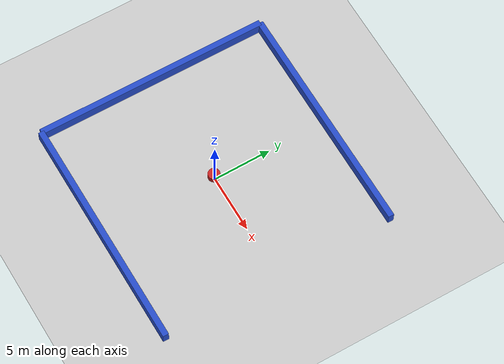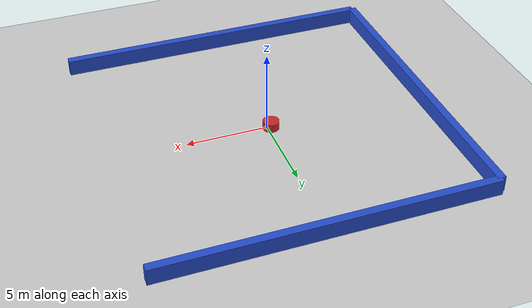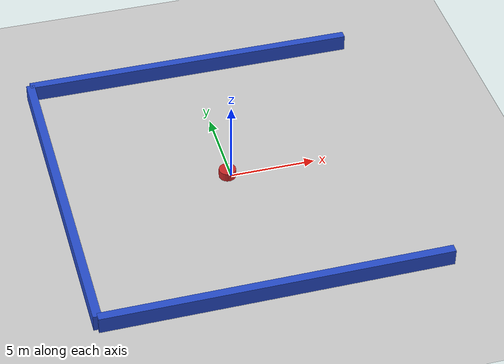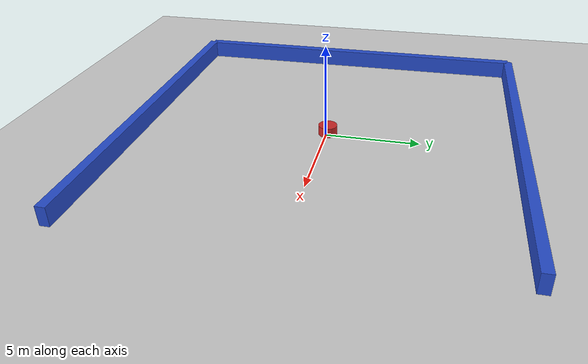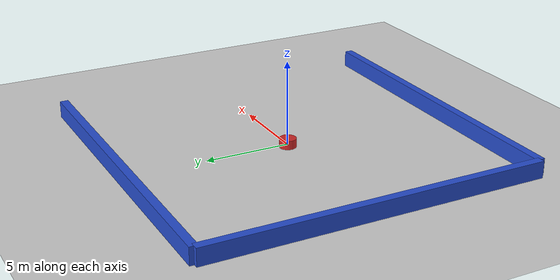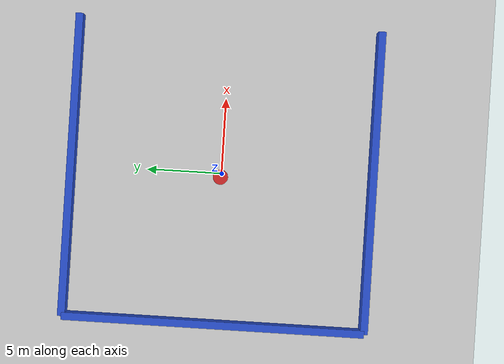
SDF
<?xml version="1.0" ?>
<sdf version="1.6">
   <world name="default">
    <model name="ground_plane">
      <static>1</static>
      <link name="link">
        <collision name="collision">
          <geometry><plane><normal>0 0 1</normal><size>100 100</size></plane></geometry>
          <surface><friction><ode><mu>100</mu><mu2>50</mu2></ode><torsional><ode/></torsional></friction><contact><ode/></contact></surface>
        </collision>
        <visual name="visual">
          <cast_shadows>0</cast_shadows>
          <geometry><plane><normal>0 0 1</normal><size>100 100</size></plane></geometry>
          <material><ambient>0.8 0.8 0.8 1</ambient><diffuse>0.8 0.8 0.8 1</diffuse><specular>0.01 0.01 0.01 1</specular></material>
        </visual>
      </link>
    </model>
    <light name="sun" type="directional">
      <cast_shadows>1</cast_shadows>
      <pose>0 0 10 0 0 0</pose>
      <diffuse>1 1 1 1</diffuse>
      <specular>0.1 0.1 0.1 1</specular>
      <attenuation><range>1000</range><constant>0.9</constant><linear>0.01</linear><quadratic>0.001</quadratic></attenuation>
      <direction>-0.5 0.5 -1</direction>
    </light>

    <model name='hardlibobs_168'>
      <static>1</static>
      <pose frame=''>-0.225000 0.075000 0.000000 0.000000 0.000000 0.000000</pose>
      <link name='link'>
        <inertial>
          <mass>1</mass>
          <inertia>
            <ixx>0.145833</ixx>
            <ixy>0</ixy>
            <ixz>0</ixz>
            <iyy>0.145833</iyy>
            <iyz>0</iyz>
            <izz>0.125</izz>
          </inertia>
        </inertial>
        <collision name='collision'>
           <geometry>
            <cylinder>
                <radius>0.5000</radius>
                 <length> 1 </length>
            </cylinder>
          </geometry>
           <surface>
            <contact>
              <ode/>
            </contact>
            <bounce/>
            <friction>
              <torsional>
                <ode/>
              </torsional>
              <ode/>
            </friction>
          </surface>
        </collision>
        <visual name='visual'>
           <geometry>
            <cylinder>
                <radius>0.5000</radius>
                 <length> 1 </length>
            </cylinder>
          </geometry>
          <material>
            <script>
              <name>Gazebo/Red</name>
              <uri>file://media/materials/scripts/gazebo.material</uri>
            </script>
          </material>
        </visual>
        <self_collide>0</self_collide>
        <kinematic>0</kinematic>
        <gravity>1</gravity>
      </link>
      <plugin name='hardlibobs_168' filename='hardlibobs_168.so'/>
    </model>

    <model name='hardlibobs_5'>
      <static>1</static>
      <pose frame=''>-0.225000 0.075000 0.000000 0.000000 0.000000 0.000000</pose>
      <link name='link'>
        <inertial>
          <mass>1</mass>
          <inertia>
            <ixx>0.145833</ixx>
            <ixy>0</ixy>
            <ixz>0</ixz>
            <iyy>0.145833</iyy>
            <iyz>0</iyz>
            <izz>0.125</izz>
          </inertia>
        </inertial>
        <collision name='collision'>
           <geometry>
            <cylinder>
                <radius>0.5000</radius>
                 <length> 1 </length>
            </cylinder>
          </geometry>
           <surface>
            <contact>
              <ode/>
            </contact>
            <bounce/>
            <friction>
              <torsional>
                <ode/>
              </torsional>
              <ode/>
            </friction>
          </surface>
        </collision>
        <visual name='visual'>
           <geometry>
            <cylinder>
                <radius>0.5000</radius>
                 <length> 1 </length>
            </cylinder>
          </geometry>
          <material>
            <script>
              <name>Gazebo/Red</name>
              <uri>file://media/materials/scripts/gazebo.material</uri>
            </script>
          </material>
        </visual>
        <self_collide>0</self_collide>
        <kinematic>0</kinematic>
        <gravity>1</gravity>
      </link>
      <plugin name='hardlibobs_5' filename='hardlibobs_5.so'/>
    </model>

    <model name='hardlibobs_129'>
      <static>1</static>
      <pose frame=''>-0.225000 0.075000 0.000000 0.000000 0.000000 0.000000</pose>
      <link name='link'>
        <inertial>
          <mass>1</mass>
          <inertia>
            <ixx>0.145833</ixx>
            <ixy>0</ixy>
            <ixz>0</ixz>
            <iyy>0.145833</iyy>
            <iyz>0</iyz>
            <izz>0.125</izz>
          </inertia>
        </inertial>
        <collision name='collision'>
           <geometry>
            <cylinder>
                <radius>0.5000</radius>
                 <length> 1 </length>
            </cylinder>
          </geometry>
           <surface>
            <contact>
              <ode/>
            </contact>
            <bounce/>
            <friction>
              <torsional>
                <ode/>
              </torsional>
              <ode/>
            </friction>
          </surface>
        </collision>
        <visual name='visual'>
           <geometry>
            <cylinder>
                <radius>0.5000</radius>
                 <length> 1 </length>
            </cylinder>
          </geometry>
          <material>
            <script>
              <name>Gazebo/Red</name>
              <uri>file://media/materials/scripts/gazebo.material</uri>
            </script>
          </material>
        </visual>
        <self_collide>0</self_collide>
        <kinematic>0</kinematic>
        <gravity>1</gravity>
      </link>
      <plugin name='hardlibobs_129' filename='hardlibobs_129.so'/>
    </model>

    <model name='hardlibobs_124'>
      <static>1</static>
      <pose frame=''>-0.225000 0.075000 0.000000 0.000000 0.000000 0.000000</pose>
      <link name='link'>
        <inertial>
          <mass>1</mass>
          <inertia>
            <ixx>0.145833</ixx>
            <ixy>0</ixy>
            <ixz>0</ixz>
            <iyy>0.145833</iyy>
            <iyz>0</iyz>
            <izz>0.125</izz>
          </inertia>
        </inertial>
        <collision name='collision'>
           <geometry>
            <cylinder>
                <radius>0.5000</radius>
                 <length> 1 </length>
            </cylinder>
          </geometry>
           <surface>
            <contact>
              <ode/>
            </contact>
            <bounce/>
            <friction>
              <torsional>
                <ode/>
              </torsional>
              <ode/>
            </friction>
          </surface>
        </collision>
        <visual name='visual'>
           <geometry>
            <cylinder>
                <radius>0.5000</radius>
                 <length> 1 </length>
            </cylinder>
          </geometry>
          <material>
            <script>
              <name>Gazebo/Red</name>
              <uri>file://media/materials/scripts/gazebo.material</uri>
            </script>
          </material>
        </visual>
        <self_collide>0</self_collide>
        <kinematic>0</kinematic>
        <gravity>1</gravity>
      </link>
      <plugin name='hardlibobs_124' filename='hardlibobs_124.so'/>
    </model>

    <model name='hardlibobs_4'>
      <static>1</static>
      <pose frame=''>-0.225000 0.075000 0.000000 0.000000 0.000000 0.000000</pose>
      <link name='link'>
        <inertial>
          <mass>1</mass>
          <inertia>
            <ixx>0.145833</ixx>
            <ixy>0</ixy>
            <ixz>0</ixz>
            <iyy>0.145833</iyy>
            <iyz>0</iyz>
            <izz>0.125</izz>
          </inertia>
        </inertial>
        <collision name='collision'>
           <geometry>
            <cylinder>
                <radius>0.5000</radius>
                 <length> 1 </length>
            </cylinder>
          </geometry>
           <surface>
            <contact>
              <ode/>
            </contact>
            <bounce/>
            <friction>
              <torsional>
                <ode/>
              </torsional>
              <ode/>
            </friction>
          </surface>
        </collision>
        <visual name='visual'>
           <geometry>
            <cylinder>
                <radius>0.5000</radius>
                 <length> 1 </length>
            </cylinder>
          </geometry>
          <material>
            <script>
              <name>Gazebo/Red</name>
              <uri>file://media/materials/scripts/gazebo.material</uri>
            </script>
          </material>
        </visual>
        <self_collide>0</self_collide>
        <kinematic>0</kinematic>
        <gravity>1</gravity>
      </link>
      <plugin name='hardlibobs_4' filename='hardlibobs_4.so'/>
    </model>

    <model name='hardlibobs_84'>
      <static>1</static>
      <pose frame=''>-0.225000 0.075000 0.000000 0.000000 0.000000 0.000000</pose>
      <link name='link'>
        <inertial>
          <mass>1</mass>
          <inertia>
            <ixx>0.145833</ixx>
            <ixy>0</ixy>
            <ixz>0</ixz>
            <iyy>0.145833</iyy>
            <iyz>0</iyz>
            <izz>0.125</izz>
          </inertia>
        </inertial>
        <collision name='collision'>
           <geometry>
            <cylinder>
                <radius>0.5000</radius>
                 <length> 1 </length>
            </cylinder>
          </geometry>
           <surface>
            <contact>
              <ode/>
            </contact>
            <bounce/>
            <friction>
              <torsional>
                <ode/>
              </torsional>
              <ode/>
            </friction>
          </surface>
        </collision>
        <visual name='visual'>
           <geometry>
            <cylinder>
                <radius>0.5000</radius>
                 <length> 1 </length>
            </cylinder>
          </geometry>
          <material>
            <script>
              <name>Gazebo/Red</name>
              <uri>file://media/materials/scripts/gazebo.material</uri>
            </script>
          </material>
        </visual>
        <self_collide>0</self_collide>
        <kinematic>0</kinematic>
        <gravity>1</gravity>
      </link>
      <plugin name='hardlibobs_84' filename='hardlibobs_84.so'/>
    </model>

    <model name='hardlibobs_99'>
      <static>1</static>
      <pose frame=''>-0.225000 0.075000 0.000000 0.000000 0.000000 0.000000</pose>
      <link name='link'>
        <inertial>
          <mass>1</mass>
          <inertia>
            <ixx>0.145833</ixx>
            <ixy>0</ixy>
            <ixz>0</ixz>
            <iyy>0.145833</iyy>
            <iyz>0</iyz>
            <izz>0.125</izz>
          </inertia>
        </inertial>
        <collision name='collision'>
           <geometry>
            <cylinder>
                <radius>0.5000</radius>
                 <length> 1 </length>
            </cylinder>
          </geometry>
           <surface>
            <contact>
              <ode/>
            </contact>
            <bounce/>
            <friction>
              <torsional>
                <ode/>
              </torsional>
              <ode/>
            </friction>
          </surface>
        </collision>
        <visual name='visual'>
           <geometry>
            <cylinder>
                <radius>0.5000</radius>
                 <length> 1 </length>
            </cylinder>
          </geometry>
          <material>
            <script>
              <name>Gazebo/Red</name>
              <uri>file://media/materials/scripts/gazebo.material</uri>
            </script>
          </material>
        </visual>
        <self_collide>0</self_collide>
        <kinematic>0</kinematic>
        <gravity>1</gravity>
      </link>
      <plugin name='hardlibobs_99' filename='hardlibobs_99.so'/>
    </model>

    <model name='hardlibobs_149'>
      <static>1</static>
      <pose frame=''>-0.225000 0.075000 0.000000 0.000000 0.000000 0.000000</pose>
      <link name='link'>
        <inertial>
          <mass>1</mass>
          <inertia>
            <ixx>0.145833</ixx>
            <ixy>0</ixy>
            <ixz>0</ixz>
            <iyy>0.145833</iyy>
            <iyz>0</iyz>
            <izz>0.125</izz>
          </inertia>
        </inertial>
        <collision name='collision'>
           <geometry>
            <cylinder>
                <radius>0.5000</radius>
                 <length> 1 </length>
            </cylinder>
          </geometry>
           <surface>
            <contact>
              <ode/>
            </contact>
            <bounce/>
            <friction>
              <torsional>
                <ode/>
              </torsional>
              <ode/>
            </friction>
          </surface>
        </collision>
        <visual name='visual'>
           <geometry>
            <cylinder>
                <radius>0.5000</radius>
                 <length> 1 </length>
            </cylinder>
          </geometry>
          <material>
            <script>
              <name>Gazebo/Red</name>
              <uri>file://media/materials/scripts/gazebo.material</uri>
            </script>
          </material>
        </visual>
        <self_collide>0</self_collide>
        <kinematic>0</kinematic>
        <gravity>1</gravity>
      </link>
      <plugin name='hardlibobs_149' filename='hardlibobs_149.so'/>
    </model>

    <model name='hardlibobs_104'>
      <static>1</static>
      <pose frame=''>-0.225000 0.075000 0.000000 0.000000 0.000000 0.000000</pose>
      <link name='link'>
        <inertial>
          <mass>1</mass>
          <inertia>
            <ixx>0.145833</ixx>
            <ixy>0</ixy>
            <ixz>0</ixz>
            <iyy>0.145833</iyy>
            <iyz>0</iyz>
            <izz>0.125</izz>
          </inertia>
        </inertial>
        <collision name='collision'>
           <geometry>
            <cylinder>
                <radius>0.5000</radius>
                 <length> 1 </length>
            </cylinder>
          </geometry>
           <surface>
            <contact>
              <ode/>
            </contact>
            <bounce/>
            <friction>
              <torsional>
                <ode/>
              </torsional>
              <ode/>
            </friction>
          </surface>
        </collision>
        <visual name='visual'>
           <geometry>
            <cylinder>
                <radius>0.5000</radius>
                 <length> 1 </length>
            </cylinder>
          </geometry>
          <material>
            <script>
              <name>Gazebo/Red</name>
              <uri>file://media/materials/scripts/gazebo.material</uri>
            </script>
          </material>
        </visual>
        <self_collide>0</self_collide>
        <kinematic>0</kinematic>
        <gravity>1</gravity>
      </link>
      <plugin name='hardlibobs_104' filename='hardlibobs_104.so'/>
    </model>

    <model name='hardlibobs_195'>
      <static>1</static>
      <pose frame=''>-0.225000 0.075000 0.000000 0.000000 0.000000 0.000000</pose>
      <link name='link'>
        <inertial>
          <mass>1</mass>
          <inertia>
            <ixx>0.145833</ixx>
            <ixy>0</ixy>
            <ixz>0</ixz>
            <iyy>0.145833</iyy>
            <iyz>0</iyz>
            <izz>0.125</izz>
          </inertia>
        </inertial>
        <collision name='collision'>
           <geometry>
            <cylinder>
                <radius>0.5000</radius>
                 <length> 1 </length>
            </cylinder>
          </geometry>
           <surface>
            <contact>
              <ode/>
            </contact>
            <bounce/>
            <friction>
              <torsional>
                <ode/>
              </torsional>
              <ode/>
            </friction>
          </surface>
        </collision>
        <visual name='visual'>
           <geometry>
            <cylinder>
                <radius>0.5000</radius>
                 <length> 1 </length>
            </cylinder>
          </geometry>
          <material>
            <script>
              <name>Gazebo/Red</name>
              <uri>file://media/materials/scripts/gazebo.material</uri>
            </script>
          </material>
        </visual>
        <self_collide>0</self_collide>
        <kinematic>0</kinematic>
        <gravity>1</gravity>
      </link>
      <plugin name='hardlibobs_195' filename='hardlibobs_195.so'/>
    </model>

    <model name='hardlibobs_54'>
      <static>1</static>
      <pose frame=''>-0.225000 0.075000 0.000000 0.000000 0.000000 0.000000</pose>
      <link name='link'>
        <inertial>
          <mass>1</mass>
          <inertia>
            <ixx>0.145833</ixx>
            <ixy>0</ixy>
            <ixz>0</ixz>
            <iyy>0.145833</iyy>
            <iyz>0</iyz>
            <izz>0.125</izz>
          </inertia>
        </inertial>
        <collision name='collision'>
           <geometry>
            <cylinder>
                <radius>0.5000</radius>
                 <length> 1 </length>
            </cylinder>
          </geometry>
           <surface>
            <contact>
              <ode/>
            </contact>
            <bounce/>
            <friction>
              <torsional>
                <ode/>
              </torsional>
              <ode/>
            </friction>
          </surface>
        </collision>
        <visual name='visual'>
           <geometry>
            <cylinder>
                <radius>0.5000</radius>
                 <length> 1 </length>
            </cylinder>
          </geometry>
          <material>
            <script>
              <name>Gazebo/Red</name>
              <uri>file://media/materials/scripts/gazebo.material</uri>
            </script>
          </material>
        </visual>
        <self_collide>0</self_collide>
        <kinematic>0</kinematic>
        <gravity>1</gravity>
      </link>
      <plugin name='hardlibobs_54' filename='hardlibobs_54.so'/>
    </model>

    <model name='hardlibobs_183'>
      <static>1</static>
      <pose frame=''>-0.225000 0.075000 0.000000 0.000000 0.000000 0.000000</pose>
      <link name='link'>
        <inertial>
          <mass>1</mass>
          <inertia>
            <ixx>0.145833</ixx>
            <ixy>0</ixy>
            <ixz>0</ixz>
            <iyy>0.145833</iyy>
            <iyz>0</iyz>
            <izz>0.125</izz>
          </inertia>
        </inertial>
        <collision name='collision'>
           <geometry>
            <cylinder>
                <radius>0.5000</radius>
                 <length> 1 </length>
            </cylinder>
          </geometry>
           <surface>
            <contact>
              <ode/>
            </contact>
            <bounce/>
            <friction>
              <torsional>
                <ode/>
              </torsional>
              <ode/>
            </friction>
          </surface>
        </collision>
        <visual name='visual'>
           <geometry>
            <cylinder>
                <radius>0.5000</radius>
                 <length> 1 </length>
            </cylinder>
          </geometry>
          <material>
            <script>
              <name>Gazebo/Red</name>
              <uri>file://media/materials/scripts/gazebo.material</uri>
            </script>
          </material>
        </visual>
        <self_collide>0</self_collide>
        <kinematic>0</kinematic>
        <gravity>1</gravity>
      </link>
      <plugin name='hardlibobs_183' filename='hardlibobs_183.so'/>
    </model>

    <model name='hardlibobs_189'>
      <static>1</static>
      <pose frame=''>-0.225000 0.075000 0.000000 0.000000 0.000000 0.000000</pose>
      <link name='link'>
        <inertial>
          <mass>1</mass>
          <inertia>
            <ixx>0.145833</ixx>
            <ixy>0</ixy>
            <ixz>0</ixz>
            <iyy>0.145833</iyy>
            <iyz>0</iyz>
            <izz>0.125</izz>
          </inertia>
        </inertial>
        <collision name='collision'>
           <geometry>
            <cylinder>
                <radius>0.5000</radius>
                 <length> 1 </length>
            </cylinder>
          </geometry>
           <surface>
            <contact>
              <ode/>
            </contact>
            <bounce/>
            <friction>
              <torsional>
                <ode/>
              </torsional>
              <ode/>
            </friction>
          </surface>
        </collision>
        <visual name='visual'>
           <geometry>
            <cylinder>
                <radius>0.5000</radius>
                 <length> 1 </length>
            </cylinder>
          </geometry>
          <material>
            <script>
              <name>Gazebo/Red</name>
              <uri>file://media/materials/scripts/gazebo.material</uri>
            </script>
          </material>
        </visual>
        <self_collide>0</self_collide>
        <kinematic>0</kinematic>
        <gravity>1</gravity>
      </link>
      <plugin name='hardlibobs_189' filename='hardlibobs_189.so'/>
    </model>

    <model name='hardlibobs_60'>
      <static>1</static>
      <pose frame=''>-0.225000 0.075000 0.000000 0.000000 0.000000 0.000000</pose>
      <link name='link'>
        <inertial>
          <mass>1</mass>
          <inertia>
            <ixx>0.145833</ixx>
            <ixy>0</ixy>
            <ixz>0</ixz>
            <iyy>0.145833</iyy>
            <iyz>0</iyz>
            <izz>0.125</izz>
          </inertia>
        </inertial>
        <collision name='collision'>
           <geometry>
            <cylinder>
                <radius>0.5000</radius>
                 <length> 1 </length>
            </cylinder>
          </geometry>
           <surface>
            <contact>
              <ode/>
            </contact>
            <bounce/>
            <friction>
              <torsional>
                <ode/>
              </torsional>
              <ode/>
            </friction>
          </surface>
        </collision>
        <visual name='visual'>
           <geometry>
            <cylinder>
                <radius>0.5000</radius>
                 <length> 1 </length>
            </cylinder>
          </geometry>
          <material>
            <script>
              <name>Gazebo/Red</name>
              <uri>file://media/materials/scripts/gazebo.material</uri>
            </script>
          </material>
        </visual>
        <self_collide>0</self_collide>
        <kinematic>0</kinematic>
        <gravity>1</gravity>
      </link>
      <plugin name='hardlibobs_60' filename='hardlibobs_60.so'/>
    </model>

    <model name='hardlibobs_66'>
      <static>1</static>
      <pose frame=''>-0.225000 0.075000 0.000000 0.000000 0.000000 0.000000</pose>
      <link name='link'>
        <inertial>
          <mass>1</mass>
          <inertia>
            <ixx>0.145833</ixx>
            <ixy>0</ixy>
            <ixz>0</ixz>
            <iyy>0.145833</iyy>
            <iyz>0</iyz>
            <izz>0.125</izz>
          </inertia>
        </inertial>
        <collision name='collision'>
           <geometry>
            <cylinder>
                <radius>0.5000</radius>
                 <length> 1 </length>
            </cylinder>
          </geometry>
           <surface>
            <contact>
              <ode/>
            </contact>
            <bounce/>
            <friction>
              <torsional>
                <ode/>
              </torsional>
              <ode/>
            </friction>
          </surface>
        </collision>
        <visual name='visual'>
           <geometry>
            <cylinder>
                <radius>0.5000</radius>
                 <length> 1 </length>
            </cylinder>
          </geometry>
          <material>
            <script>
              <name>Gazebo/Red</name>
              <uri>file://media/materials/scripts/gazebo.material</uri>
            </script>
          </material>
        </visual>
        <self_collide>0</self_collide>
        <kinematic>0</kinematic>
        <gravity>1</gravity>
      </link>
      <plugin name='hardlibobs_66' filename='hardlibobs_66.so'/>
    </model>

      <model name="back_wall">
      <static>1</static>\   <pose>-10 0 .5 0 0 0</pose>        <link name="box_link">

	<collision name='collision'>
            <geometry>
              <box>
                <size>.5 20 1</size>
              </box>
            </geometry>
           <surface>
            <contact>
              <ode/>
            </contact>
            <bounce/>
            <friction>
              <torsional>
                <ode/>
              </torsional>
              <ode/>
            </friction>
          </surface>
        </collision>

          <visual name="visual">
            <geometry>
              <box>
                <size>.5 20 1</size>
              </box>
            </geometry>
          <material>
                 <script>
                     <name>Gazebo/Blue</name>
                         <uri>file://media/materials/scripts/gazebo.material</uri>
                         </script>
                     </material>
          </visual>
        </link>
      </model>
      <model name="top_wall">
      <static>1</static>
       <pose>0 10 .5 0 0 0</pose>        <link name="box_link">

	<collision name='collision'>
           <geometry>
              <box>
                <size>20 .5 1</size>
              </box>
            </geometry>
           <surface>
            <contact>
              <ode/>
            </contact>
            <bounce/>
            <friction>
              <torsional>
                <ode/>
              </torsional>
              <ode/>
            </friction>
          </surface>
        </collision>
          <visual name="visual">
            <geometry>
              <box>
                <size>20 .5 1</size>
              </box>
            </geometry>
          <material>
                 <script>
                     <name>Gazebo/Blue</name>
                         <uri>file://media/materials/scripts/gazebo.material</uri>
                         </script>
                     </material>
          </visual>
        </link>
      </model>
      <model name="bottom_wall">
      <static>1</static>
       <pose>0 -10 .5 0 0 0</pose>        <link name="box_link">
	<collision name='collision'>
            <geometry>
              <box>
                <size>20 .5 1</size>
              </box>
            </geometry>
           <surface>
            <contact>
              <ode/>
            </contact>
            <bounce/>
            <friction>
              <torsional>
                <ode/>
              </torsional>
              <ode/>
            </friction>
          </surface>
        </collision>
          <visual name="visual">
            <geometry>
              <box>
                <size>20 .5 1</size>
              </box>
            </geometry>
          <material>
                 <script>
                     <name>Gazebo/Blue</name>
                         <uri>file://media/materials/scripts/gazebo.material</uri>
                         </script>
                     </material>
          </visual>
        </link>
      </model>
   </world>
</sdf>
